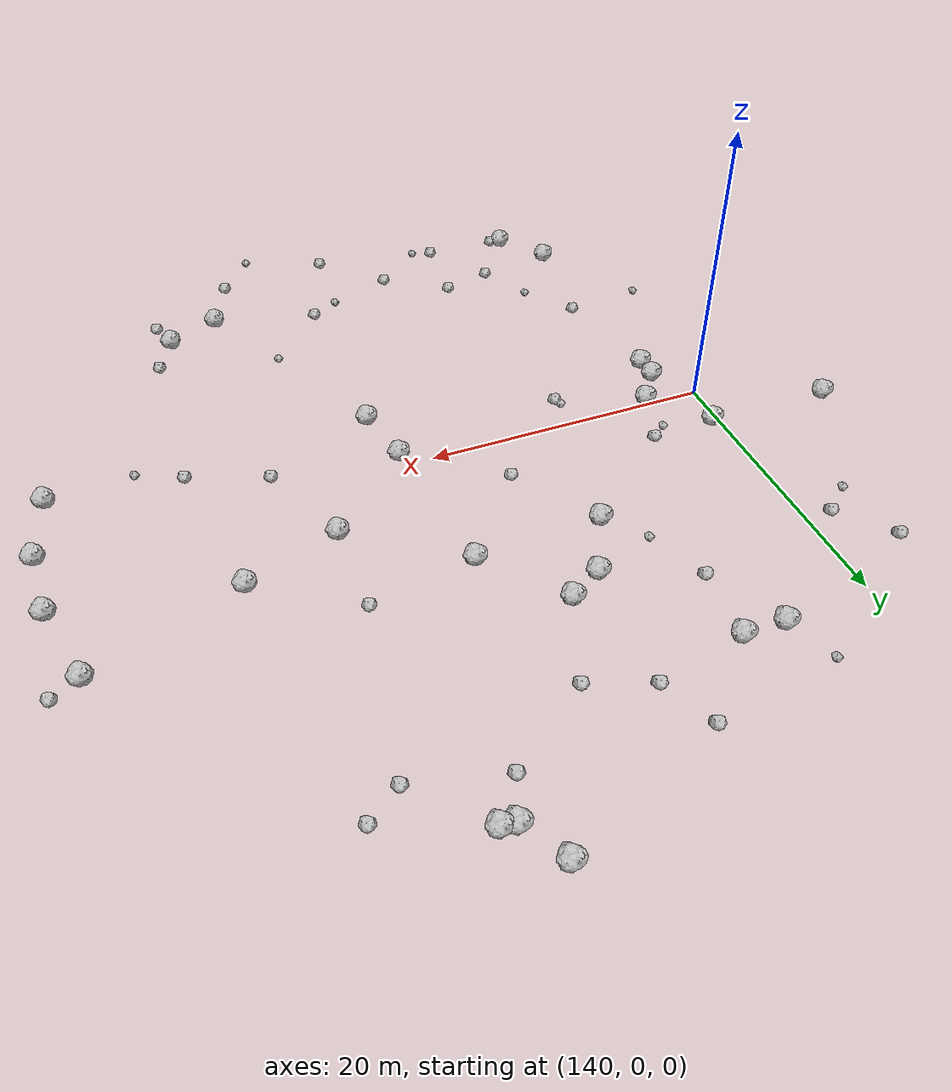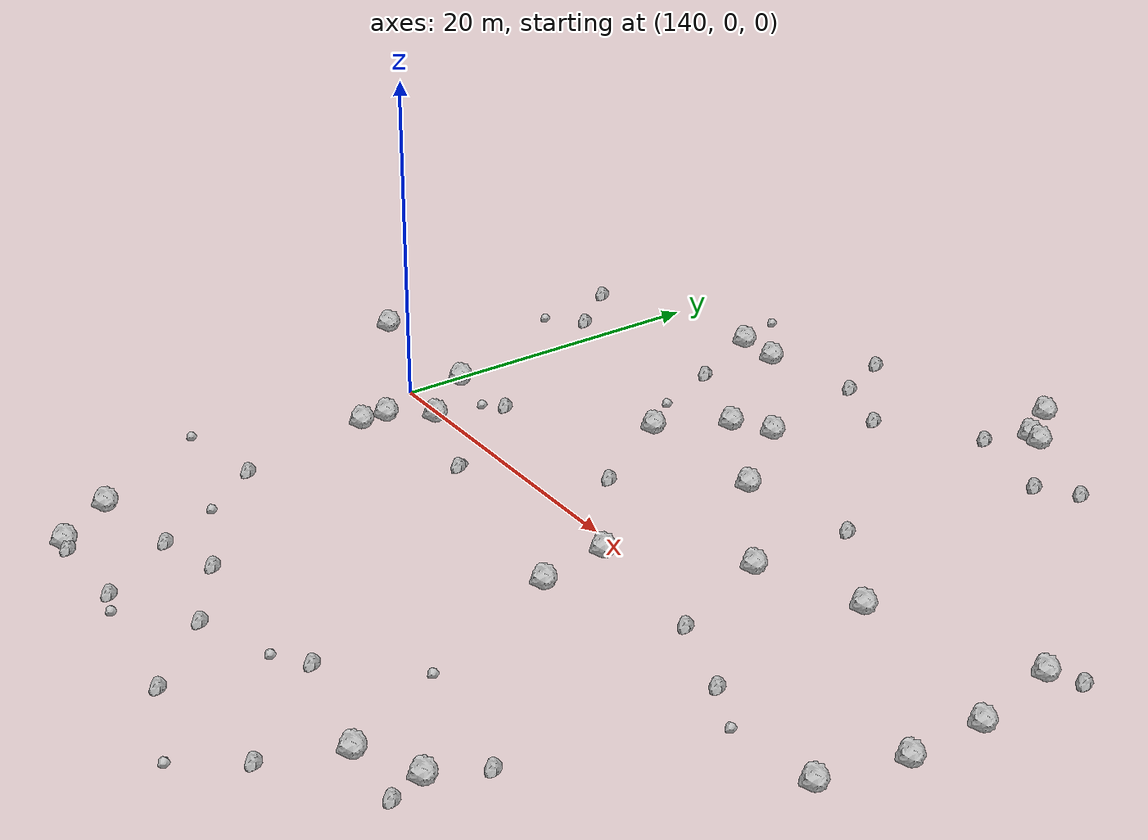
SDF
<sdf version="1.6">
 <world name="default">
  <include><uri>model://sun</uri></include>
  <model name="rock1_4_1">
   <include><uri>model://rock1</uri><pose>148.94816382788233 20.72558342376395 0.5 0 0 0</pose></include>
  </model>
  <model name="rock1_4_2">
   <include><uri>model://rock1</uri><pose>162.9899766882194 -5.45170447223807 0.5 0 0 0</pose></include>
  </model>
  <model name="rock1_4_3">
   <include><uri>model://rock1</uri><pose>174.15068449478008 -19.524692243667012 0.5 0 0 0</pose></include>
  </model>
  <model name="rock1_4_4">
   <include><uri>model://rock1</uri><pose>140.56961603035717 3.1937697175055533 0.5 0 0 0</pose></include>
  </model>
  <model name="rock1_4_5">
   <include><uri>model://rock1</uri><pose>142.5480200208891 -21.19401084772164 0.5 0 0 0</pose></include>
  </model>
  <model name="rock1_4_6">
   <include><uri>model://rock1</uri><pose>146.1532480349165 20.76080800329747 0.5 0 0 0</pose></include>
  </model>
  <model name="rock1_4_7">
   <include><uri>model://rock1</uri><pose>166.29096699092514 26.894887243314088 0.5 0 0 0</pose></include>
  </model>
  <model name="rock1_4_8">
   <include><uri>model://rock1</uri><pose>143.79718534029675 -0.5396803899597948 0.5 0 0 0</pose></include>
  </model>
  <model name="rock1_4_9">
   <include><uri>model://rock1</uri><pose>185.57269138441958 4.954238989184368 0.5 0 0 0</pose></include>
  </model>
  <model name="rock1_4_10">
   <include><uri>model://rock1</uri><pose>170.48415638620412 -21.22456760195783 0.5 0 0 0</pose></include>
  </model>
  <model name="rock1_4_11">
   <include><uri>model://rock1</uri><pose>156.6825005564636 14.762655588086211 0.5 0 0 0</pose></include>
  </model>
  <model name="rock1_4_12">
   <include><uri>model://rock1</uri><pose>145.0509918815724 -24.7389053579605 0.5 0 0 0</pose></include>
  </model>
  <model name="rock1_4_13">
   <include><uri>model://rock1</uri><pose>185.77927711767765 0.21410181496604253 0.5 0 0 0</pose></include>
  </model>
  <model name="rock1_4_14">
   <include><uri>model://rock1</uri><pose>162.09332237568987 -1.0340263326977883 0.5 0 0 0</pose></include>
  </model>
  <model name="rock1_4_15">
   <include><uri>model://rock1</uri><pose>142.05793728751198 -2.8953672164399222 0.5 0 0 0</pose></include>
  </model>
  <model name="rock1_4_16">
   <include><uri>model://rock1</uri><pose>174.29240969530622 6.954188379442471 0.5 0 0 0</pose></include>
  </model>
  <model name="rock1_4_17">
   <include><uri>model://rock1</uri><pose>184.7344016702836 -4.738996374068961 0.5 0 0 0</pose></include>
  </model>
  <model name="rock1_4_18">
   <include><uri>model://rock1</uri><pose>184.10261418053554 10.479440406530486 0.5 0 0 0</pose></include>
  </model>
  <model name="rock1_4_19">
   <include><uri>model://rock1</uri><pose>160.83029885174466 9.77656189089219 0.5 0 0 0</pose></include>
  </model>
  <model name="rock1_4_20">
   <include><uri>model://rock1</uri><pose>142.07580289846038 -4.561303673936109 0.5 0 0 0</pose></include>
  </model>
  <model name="rock1_4_21">
   <include><uri>model://rock1</uri><pose>154.40237943995822 13.444050947177502 0.5 0 0 0</pose></include>
  </model>
  <model name="rock1_4_22">
   <include><uri>model://rock1</uri><pose>131.6383125618967 3.3275079496622624 0.5 0 0 0</pose></include>
  </model>
  <model name="rock1_4_23">
   <include><uri>model://rock1</uri><pose>152.23020450353226 9.35789272005563 0.5 0 0 0</pose></include>
  </model>
  <model name="rock1_4_24">
   <include><uri>model://rock1</uri><pose>163.8218228326115 29.682010825585863 0.5 0 0 0</pose></include>
  </model>
  <model name="rock1_4_25">
   <include><uri>model://rock1</uri><pose>165.40861710130793 27.017810535122592 0.5 0 0 0</pose></include>
  </model>
  <model name="rock1_4_26">
   <include><uri>model://rock1</uri><pose>167.9723916668847 4.677393563075391 0.5 0 0 0</pose></include>
  </model>
  <model name="rock2_4_0">
   <include><uri>model://rock2</uri><pose>174.86503676475473 -21.628341784724647 0.3 0 0 0</pose></include>
  </model>
  <model name="rock2_4_1">
   <include><uri>model://rock2</uri><pose>155.87595984473785 3.6415087317956463 0.3 0 0 0</pose></include>
  </model>
  <model name="rock2_4_2">
   <include><uri>model://rock2</uri><pose>167.92977901290016 11.131133869338932 0.3 0 0 0</pose></include>
  </model>
  <model name="rock2_4_3">
   <include><uri>model://rock2</uri><pose>156.32393294671857 -22.213806718505456 0.3 0 0 0</pose></include>
  </model>
  <model name="rock2_4_4">
   <include><uri>model://rock2</uri><pose>160.56388256512156 -26.58528885474991 0.3 0 0 0</pose></include>
  </model>
  <model name="rock2_4_5">
   <include><uri>model://rock2</uri><pose>135.51180360817773 17.18357365011221 0.3 0 0 0</pose></include>
  </model>
  <model name="rock2_4_6">
   <include><uri>model://rock2</uri><pose>149.87168187872697 -2.6773609946134087 0.3 0 0 0</pose></include>
  </model>
  <model name="rock2_4_7">
   <include><uri>model://rock2</uri><pose>175.4729983806037 -16.49829096916389 0.3 0 0 0</pose></include>
  </model>
  <model name="rock2_4_8">
   <include><uri>model://rock2</uri><pose>175.93233558414346 -3.750220042929083 0.3 0 0 0</pose></include>
  </model>
  <model name="rock2_4_9">
   <include><uri>model://rock2</uri><pose>148.17269421116944 -20.23887441097223 0.3 0 0 0</pose></include>
  </model>
  <model name="rock2_4_10">
   <include><uri>model://rock2</uri><pose>164.33665541913277 24.42164566603637 0.3 0 0 0</pose></include>
  </model>
  <model name="rock2_4_11">
   <include><uri>model://rock2</uri><pose>143.66871507554404 -12.915326009123142 0.3 0 0 0</pose></include>
  </model>
  <model name="rock2_4_12">
   <include><uri>model://rock2</uri><pose>185.8262538786405 11.44303183086398 0.3 0 0 0</pose></include>
  </model>
  <model name="rock2_4_13">
   <include><uri>model://rock2</uri><pose>151.2897199089418 -24.970468326623376 0.3 0 0 0</pose></include>
  </model>
  <model name="rock2_4_14">
   <include><uri>model://rock2</uri><pose>145.18750756264285 3.4855655442303544 0.3 0 0 0</pose></include>
  </model>
  <model name="rock2_4_15">
   <include><uri>model://rock2</uri><pose>172.17692169028436 24.490203748906275 0.3 0 0 0</pose></include>
  </model>
  <model name="rock2_4_16">
   <include><uri>model://rock2</uri><pose>170.0334512641235 22.981515467991578 0.3 0 0 0</pose></include>
  </model>
  <model name="rock2_4_17">
   <include><uri>model://rock2</uri><pose>151.80044993189225 -19.217104085653645 0.3 0 0 0</pose></include>
  </model>
  <model name="rock2_4_18">
   <include><uri>model://rock2</uri><pose>168.76372829969472 -25.56791953717042 0.3 0 0 0</pose></include>
  </model>
  <model name="rock2_4_19">
   <include><uri>model://rock2</uri><pose>158.92826846487097 20.569609524035045 0.3 0 0 0</pose></include>
  </model>
  <model name="rock2_4_20">
   <include><uri>model://rock2</uri><pose>170.63519286511158 -1.8033234746746274 0.3 0 0 0</pose></include>
  </model>
  <model name="rock2_4_21">
   <include><uri>model://rock2</uri><pose>154.92616294329991 22.04381597979294 0.3 0 0 0</pose></include>
  </model>
  <model name="rock2_4_22">
   <include><uri>model://rock2</uri><pose>138.25431452729129 13.94806151648875 0.3 0 0 0</pose></include>
  </model>
  <model name="rock2_4_23">
   <include><uri>model://rock2</uri><pose>145.8544903837756 -24.90297257537133 0.3 0 0 0</pose></include>
  </model>
  <model name="rock2_4_24">
   <include><uri>model://rock2</uri><pose>162.97251938686324 -19.301245709032692 0.3 0 0 0</pose></include>
  </model>
  <model name="rock2_4_25">
   <include><uri>model://rock2</uri><pose>148.50095174934788 15.922666993466557 0.3 0 0 0</pose></include>
  </model>
  <model name="rock2_4_26">
   <include><uri>model://rock2</uri><pose>153.36345238287223 25.42358606221346 0.3 0 0 0</pose></include>
  </model>
  <model name="rock3_4_0">
   <include><uri>model://rock3</uri><pose>166.2599620254528 -29.01854277826142 0.2 0 0 0</pose></include>
  </model>
  <model name="rock3_4_1">
   <include><uri>model://rock3</uri><pose>146.1857265604183 -16.499637032651925 0.2 0 0 0</pose></include>
  </model>
  <model name="rock3_4_2">
   <include><uri>model://rock3</uri><pose>144.00293685585825 2.558941744172465 0.2 0 0 0</pose></include>
  </model>
  <model name="rock3_4_3">
   <include><uri>model://rock3</uri><pose>136.16097448513344 12.253204250953218 0.2 0 0 0</pose></include>
  </model>
  <model name="rock3_4_4">
   <include><uri>model://rock3</uri><pose>166.95112724301504 -14.682722675208371 0.2 0 0 0</pose></include>
  </model>
  <model name="rock3_4_5">
   <include><uri>model://rock3</uri><pose>144.86693114483344 23.89430756149686 0.2 0 0 0</pose></include>
  </model>
  <model name="rock3_4_6">
   <include><uri>model://rock3</uri><pose>149.56539595432957 -2.2249242227832724 0.2 0 0 0</pose></include>
  </model>
  <model name="rock3_4_7">
   <include><uri>model://rock3</uri><pose>160.90307748578817 -20.589657339325917 0.2 0 0 0</pose></include>
  </model>
  <model name="rock3_4_8">
   <include><uri>model://rock3</uri><pose>137.88167689540919 -13.662706612154143 0.2 0 0 0</pose></include>
  </model>
  <model name="rock3_4_9">
   <include><uri>model://rock3</uri><pose>150.07145457367744 11.8546992767835 0.2 0 0 0</pose></include>
  </model>
  <model name="rock3_4_10">
   <include><uri>model://rock3</uri><pose>152.69389583262458 -25.532091529520187 0.2 0 0 0</pose></include>
  </model>
  <model name="rock3_4_11">
   <include><uri>model://rock3</uri><pose>178.92908185274476 -5.2454176364928315 0.2 0 0 0</pose></include>
  </model>
 </world>
</sdf>
